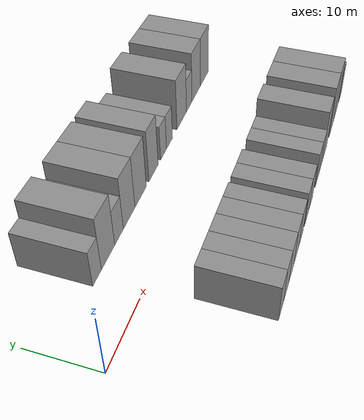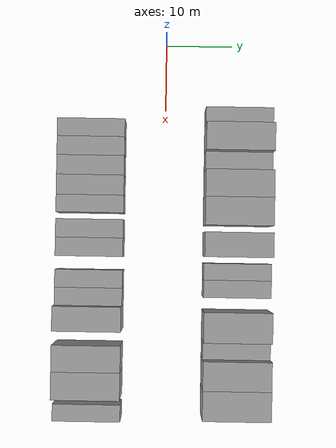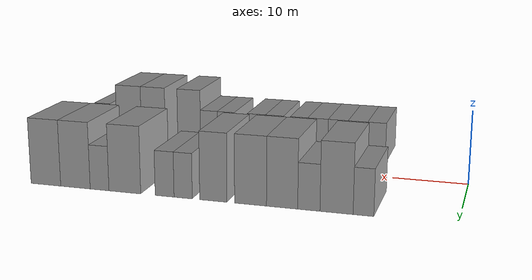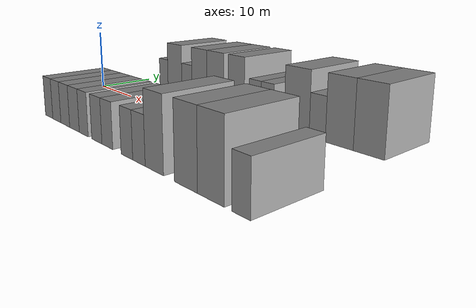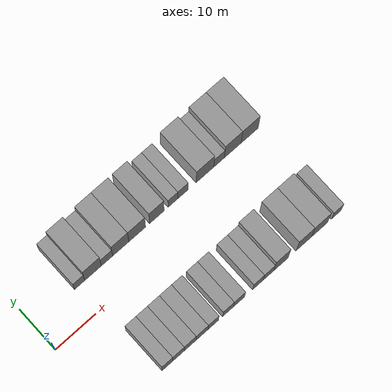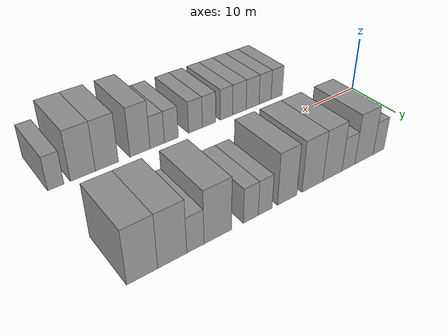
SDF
<sdf version="1.6">
 <world name="default">
  <model name="building_1">
   <static>1</static>
   <pose>11.2626 11.0000 0 0.000000 0.000000 1.570796</pose>
   <link name="link">
    <pose>0 0 3.00 0 0 0</pose>
    <collision name="collision"><geometry><box><size>10.0000 2.5252 6.0000</size></box></geometry></collision>
    <visual name="visual">
     <cast_shadows>0</cast_shadows>
     <geometry><box><size>10.0000 2.5252 6.0000</size></box></geometry>
     <material>
      <script>
       <uri>model://grey_wall/materials/scripts</uri>
       <uri>model://grey_wall/materials/textures</uri>
       <name>vrc/grey_wall</name>
      </script>
     </material>
    </visual>
   </link>
  </model>
  <model name="building_2">
   <static>1</static>
   <pose>14.5752 11.0000 0 0.000000 0.000000 1.570796</pose>
   <link name="link">
    <pose>0 0 4.50 0 0 0</pose>
    <collision name="collision"><geometry><box><size>10.0000 4.1001 9.0000</size></box></geometry></collision>
    <visual name="visual">
     <cast_shadows>0</cast_shadows>
     <geometry><box><size>10.0000 4.1001 9.0000</size></box></geometry>
     <material>
      <script>
       <uri>model://grey_wall/materials/scripts</uri>
       <uri>model://grey_wall/materials/textures</uri>
       <name>vrc/grey_wall</name>
      </script>
     </material>
    </visual>
   </link>
  </model>
  <model name="building_3">
   <static>1</static>
   <pose>18.0243 11.0000 0 0.000000 0.000000 1.570796</pose>
   <link name="link">
    <pose>0 0 3.00 0 0 0</pose>
    <collision name="collision"><geometry><box><size>10.0000 2.7979 6.0000</size></box></geometry></collision>
    <visual name="visual">
     <cast_shadows>0</cast_shadows>
     <geometry><box><size>10.0000 2.7979 6.0000</size></box></geometry>
     <material>
      <script>
       <uri>model://grey_wall/materials/scripts</uri>
       <uri>model://grey_wall/materials/textures</uri>
       <name>vrc/grey_wall</name>
      </script>
     </material>
    </visual>
   </link>
  </model>
  <model name="building_4">
   <static>1</static>
   <pose>21.4172 11.0000 0 0.000000 0.000000 1.570796</pose>
   <link name="link">
    <pose>0 0 4.50 0 0 0</pose>
    <collision name="collision"><geometry><box><size>10.0000 3.9879 9.0000</size></box></geometry></collision>
    <visual name="visual">
     <cast_shadows>0</cast_shadows>
     <geometry><box><size>10.0000 3.9879 9.0000</size></box></geometry>
     <material>
      <script>
       <uri>model://grey_wall/materials/scripts</uri>
       <uri>model://grey_wall/materials/textures</uri>
       <name>vrc/grey_wall</name>
      </script>
     </material>
    </visual>
   </link>
  </model>
  <model name="building_5">
   <static>1</static>
   <pose>25.4855 11.0000 0 0.000000 0.000000 1.570796</pose>
   <link name="link">
    <pose>0 0 4.50 0 0 0</pose>
    <collision name="collision"><geometry><box><size>10.0000 4.1488 9.0000</size></box></geometry></collision>
    <visual name="visual">
     <cast_shadows>0</cast_shadows>
     <geometry><box><size>10.0000 4.1488 9.0000</size></box></geometry>
     <material>
      <script>
       <uri>model://grey_wall/materials/scripts</uri>
       <uri>model://grey_wall/materials/textures</uri>
       <name>vrc/grey_wall</name>
      </script>
     </material>
    </visual>
   </link>
  </model>
  <model name="building_6">
   <static>1</static>
   <pose>30.3708 11.0000 0 0.000000 0.000000 1.570796</pose>
   <link name="link">
    <pose>0 0 4.50 0 0 0</pose>
    <collision name="collision"><geometry><box><size>10.0000 3.6217 9.0000</size></box></geometry></collision>
    <visual name="visual">
     <cast_shadows>0</cast_shadows>
     <geometry><box><size>10.0000 3.6217 9.0000</size></box></geometry>
     <material>
      <script>
       <uri>model://grey_wall/materials/scripts</uri>
       <uri>model://grey_wall/materials/textures</uri>
       <name>vrc/grey_wall</name>
      </script>
     </material>
    </visual>
   </link>
  </model>
  <model name="building_7">
   <static>1</static>
   <pose>34.4124 11.0000 0 0.000000 0.000000 1.570796</pose>
   <link name="link">
    <pose>0 0 3.00 0 0 0</pose>
    <collision name="collision"><geometry><box><size>10.0000 2.4615 6.0000</size></box></geometry></collision>
    <visual name="visual">
     <cast_shadows>0</cast_shadows>
     <geometry><box><size>10.0000 2.4615 6.0000</size></box></geometry>
     <material>
      <script>
       <uri>model://grey_wall/materials/scripts</uri>
       <uri>model://grey_wall/materials/textures</uri>
       <name>vrc/grey_wall</name>
      </script>
     </material>
    </visual>
   </link>
  </model>
  <model name="building_8">
   <static>1</static>
   <pose>36.9330 11.0000 0 0.000000 0.000000 1.570796</pose>
   <link name="link">
    <pose>0 0 3.00 0 0 0</pose>
    <collision name="collision"><geometry><box><size>10.0000 2.5796 6.0000</size></box></geometry></collision>
    <visual name="visual">
     <cast_shadows>0</cast_shadows>
     <geometry><box><size>10.0000 2.5796 6.0000</size></box></geometry>
     <material>
      <script>
       <uri>model://grey_wall/materials/scripts</uri>
       <uri>model://grey_wall/materials/textures</uri>
       <name>vrc/grey_wall</name>
      </script>
     </material>
    </visual>
   </link>
  </model>
  <model name="building_9">
   <static>1</static>
   <pose>42.4474 11.0000 0 0.000000 0.000000 1.570796</pose>
   <link name="link">
    <pose>0 0 4.50 0 0 0</pose>
    <collision name="collision"><geometry><box><size>10.0000 4.4493 9.0000</size></box></geometry></collision>
    <visual name="visual">
     <cast_shadows>0</cast_shadows>
     <geometry><box><size>10.0000 4.4493 9.0000</size></box></geometry>
     <material>
      <script>
       <uri>model://grey_wall/materials/scripts</uri>
       <uri>model://grey_wall/materials/textures</uri>
       <name>vrc/grey_wall</name>
      </script>
     </material>
    </visual>
   </link>
  </model>
  <model name="building_10">
   <static>1</static>
   <pose>46.0073 11.0000 0 0.000000 0.000000 1.570796</pose>
   <link name="link">
    <pose>0 0 3.00 0 0 0</pose>
    <collision name="collision"><geometry><box><size>10.0000 2.6704 6.0000</size></box></geometry></collision>
    <visual name="visual">
     <cast_shadows>0</cast_shadows>
     <geometry><box><size>10.0000 2.6704 6.0000</size></box></geometry>
     <material>
      <script>
       <uri>model://grey_wall/materials/scripts</uri>
       <uri>model://grey_wall/materials/textures</uri>
       <name>vrc/grey_wall</name>
      </script>
     </material>
    </visual>
   </link>
  </model>
  <model name="building_11">
   <static>1</static>
   <pose>49.4722 11.0000 0 0.000000 0.000000 1.570796</pose>
   <link name="link">
    <pose>0 0 4.50 0 0 0</pose>
    <collision name="collision"><geometry><box><size>10.0000 4.2595 9.0000</size></box></geometry></collision>
    <visual name="visual">
     <cast_shadows>0</cast_shadows>
     <geometry><box><size>10.0000 4.2595 9.0000</size></box></geometry>
     <material>
      <script>
       <uri>model://grey_wall/materials/scripts</uri>
       <uri>model://grey_wall/materials/textures</uri>
       <name>vrc/grey_wall</name>
      </script>
     </material>
    </visual>
   </link>
  </model>
  <model name="building_12">
   <static>1</static>
   <pose>53.7757 11.0000 0 0.000000 0.000000 1.570796</pose>
   <link name="link">
    <pose>0 0 4.50 0 0 0</pose>
    <collision name="collision"><geometry><box><size>10.0000 4.3475 9.0000</size></box></geometry></collision>
    <visual name="visual">
     <cast_shadows>0</cast_shadows>
     <geometry><box><size>10.0000 4.3475 9.0000</size></box></geometry>
     <material>
      <script>
       <uri>model://grey_wall/materials/scripts</uri>
       <uri>model://grey_wall/materials/textures</uri>
       <name>vrc/grey_wall</name>
      </script>
     </material>
    </visual>
   </link>
  </model>
  <model name="building_50">
   <static>1</static>
   <pose>13.3277 -11.0000 0 0.000000 0.000000 1.570796</pose>
   <link name="link">
    <pose>0 0 3.00 0 0 0</pose>
    <collision name="collision"><geometry><box><size>10.0000 2.6553 6.0000</size></box></geometry></collision>
    <visual name="visual">
     <cast_shadows>0</cast_shadows>
     <geometry><box><size>10.0000 2.6553 6.0000</size></box></geometry>
     <material>
      <script>
       <uri>model://grey_wall/materials/scripts</uri>
       <uri>model://grey_wall/materials/textures</uri>
       <name>vrc/grey_wall</name>
      </script>
     </material>
    </visual>
   </link>
  </model>
  <model name="building_51">
   <static>1</static>
   <pose>16.0517 -11.0000 0 0.000000 0.000000 1.570796</pose>
   <link name="link">
    <pose>0 0 3.00 0 0 0</pose>
    <collision name="collision"><geometry><box><size>10.0000 2.7927 6.0000</size></box></geometry></collision>
    <visual name="visual">
     <cast_shadows>0</cast_shadows>
     <geometry><box><size>10.0000 2.7927 6.0000</size></box></geometry>
     <material>
      <script>
       <uri>model://grey_wall/materials/scripts</uri>
       <uri>model://grey_wall/materials/textures</uri>
       <name>vrc/grey_wall</name>
      </script>
     </material>
    </visual>
   </link>
  </model>
  <model name="building_52">
   <static>1</static>
   <pose>18.8957 -11.0000 0 0.000000 0.000000 1.570796</pose>
   <link name="link">
    <pose>0 0 3.00 0 0 0</pose>
    <collision name="collision"><geometry><box><size>10.0000 2.8953 6.0000</size></box></geometry></collision>
    <visual name="visual">
     <cast_shadows>0</cast_shadows>
     <geometry><box><size>10.0000 2.8953 6.0000</size></box></geometry>
     <material>
      <script>
       <uri>model://grey_wall/materials/scripts</uri>
       <uri>model://grey_wall/materials/textures</uri>
       <name>vrc/grey_wall</name>
      </script>
     </material>
    </visual>
   </link>
  </model>
  <model name="building_53">
   <static>1</static>
   <pose>21.8274 -11.0000 0 0.000000 0.000000 1.570796</pose>
   <link name="link">
    <pose>0 0 3.00 0 0 0</pose>
    <collision name="collision"><geometry><box><size>10.0000 2.9682 6.0000</size></box></geometry></collision>
    <visual name="visual">
     <cast_shadows>0</cast_shadows>
     <geometry><box><size>10.0000 2.9682 6.0000</size></box></geometry>
     <material>
      <script>
       <uri>model://grey_wall/materials/scripts</uri>
       <uri>model://grey_wall/materials/textures</uri>
       <name>vrc/grey_wall</name>
      </script>
     </material>
    </visual>
   </link>
  </model>
  <model name="building_54">
   <static>1</static>
   <pose>24.6127 -11.0000 0 0.000000 0.000000 1.570796</pose>
   <link name="link">
    <pose>0 0 3.00 0 0 0</pose>
    <collision name="collision"><geometry><box><size>10.0000 2.6025 6.0000</size></box></geometry></collision>
    <visual name="visual">
     <cast_shadows>0</cast_shadows>
     <geometry><box><size>10.0000 2.6025 6.0000</size></box></geometry>
     <material>
      <script>
       <uri>model://grey_wall/materials/scripts</uri>
       <uri>model://grey_wall/materials/textures</uri>
       <name>vrc/grey_wall</name>
      </script>
     </material>
    </visual>
   </link>
  </model>
  <model name="building_55">
   <static>1</static>
   <pose>28.2843 -11.0000 0 0.000000 0.000000 1.570796</pose>
   <link name="link">
    <pose>0 0 3.00 0 0 0</pose>
    <collision name="collision"><geometry><box><size>10.0000 2.7407 6.0000</size></box></geometry></collision>
    <visual name="visual">
     <cast_shadows>0</cast_shadows>
     <geometry><box><size>10.0000 2.7407 6.0000</size></box></geometry>
     <material>
      <script>
       <uri>model://grey_wall/materials/scripts</uri>
       <uri>model://grey_wall/materials/textures</uri>
       <name>vrc/grey_wall</name>
      </script>
     </material>
    </visual>
   </link>
  </model>
  <model name="building_56">
   <static>1</static>
   <pose>31.0328 -11.0000 0 0.000000 0.000000 1.570796</pose>
   <link name="link">
    <pose>0 0 3.00 0 0 0</pose>
    <collision name="collision"><geometry><box><size>10.0000 2.7564 6.0000</size></box></geometry></collision>
    <visual name="visual">
     <cast_shadows>0</cast_shadows>
     <geometry><box><size>10.0000 2.7564 6.0000</size></box></geometry>
     <material>
      <script>
       <uri>model://grey_wall/materials/scripts</uri>
       <uri>model://grey_wall/materials/textures</uri>
       <name>vrc/grey_wall</name>
      </script>
     </material>
    </visual>
   </link>
  </model>
  <model name="building_57">
   <static>1</static>
   <pose>35.7316 -11.0000 0 0.000000 0.000000 1.570796</pose>
   <link name="link">
    <pose>0 0 3.00 0 0 0</pose>
    <collision name="collision"><geometry><box><size>10.0000 2.6412 6.0000</size></box></geometry></collision>
    <visual name="visual">
     <cast_shadows>0</cast_shadows>
     <geometry><box><size>10.0000 2.6412 6.0000</size></box></geometry>
     <material>
      <script>
       <uri>model://grey_wall/materials/scripts</uri>
       <uri>model://grey_wall/materials/textures</uri>
       <name>vrc/grey_wall</name>
      </script>
     </material>
    </visual>
   </link>
  </model>
  <model name="building_58">
   <static>1</static>
   <pose>38.3805 -11.0000 0 0.000000 0.000000 1.570796</pose>
   <link name="link">
    <pose>0 0 3.00 0 0 0</pose>
    <collision name="collision"><geometry><box><size>10.0000 2.6566 6.0000</size></box></geometry></collision>
    <visual name="visual">
     <cast_shadows>0</cast_shadows>
     <geometry><box><size>10.0000 2.6566 6.0000</size></box></geometry>
     <material>
      <script>
       <uri>model://grey_wall/materials/scripts</uri>
       <uri>model://grey_wall/materials/textures</uri>
       <name>vrc/grey_wall</name>
      </script>
     </material>
    </visual>
   </link>
  </model>
  <model name="building_59">
   <static>1</static>
   <pose>41.5148 -11.0000 0 0.000000 0.000000 1.570796</pose>
   <link name="link">
    <pose>0 0 4.50 0 0 0</pose>
    <collision name="collision"><geometry><box><size>10.0000 3.6121 9.0000</size></box></geometry></collision>
    <visual name="visual">
     <cast_shadows>0</cast_shadows>
     <geometry><box><size>10.0000 3.6121 9.0000</size></box></geometry>
     <material>
      <script>
       <uri>model://grey_wall/materials/scripts</uri>
       <uri>model://grey_wall/materials/textures</uri>
       <name>vrc/grey_wall</name>
      </script>
     </material>
    </visual>
   </link>
  </model>
  <model name="building_60">
   <static>1</static>
   <pose>47.2590 -11.0000 0 0.000000 0.000000 1.570796</pose>
   <link name="link">
    <pose>0 0 4.50 0 0 0</pose>
    <collision name="collision"><geometry><box><size>10.0000 3.8763 9.0000</size></box></geometry></collision>
    <visual name="visual">
     <cast_shadows>0</cast_shadows>
     <geometry><box><size>10.0000 3.8763 9.0000</size></box></geometry>
     <material>
      <script>
       <uri>model://grey_wall/materials/scripts</uri>
       <uri>model://grey_wall/materials/textures</uri>
       <name>vrc/grey_wall</name>
      </script>
     </material>
    </visual>
   </link>
  </model>
  <model name="building_61">
   <static>1</static>
   <pose>51.2214 -11.0000 0 0.000000 0.000000 1.570796</pose>
   <link name="link">
    <pose>0 0 4.50 0 0 0</pose>
    <collision name="collision"><geometry><box><size>10.0000 4.0485 9.0000</size></box></geometry></collision>
    <visual name="visual">
     <cast_shadows>0</cast_shadows>
     <geometry><box><size>10.0000 4.0485 9.0000</size></box></geometry>
     <material>
      <script>
       <uri>model://grey_wall/materials/scripts</uri>
       <uri>model://grey_wall/materials/textures</uri>
       <name>vrc/grey_wall</name>
      </script>
     </material>
    </visual>
   </link>
  </model>
  <model name="building_62">
   <static>1</static>
   <pose>55.5011 -11.0000 0 0.000000 0.000000 1.570796</pose>
   <link name="link">
    <pose>0 0 3.00 0 0 0</pose>
    <collision name="collision"><geometry><box><size>10.0000 2.5110 6.0000</size></box></geometry></collision>
    <visual name="visual">
     <cast_shadows>0</cast_shadows>
     <geometry><box><size>10.0000 2.5110 6.0000</size></box></geometry>
     <material>
      <script>
       <uri>model://grey_wall/materials/scripts</uri>
       <uri>model://grey_wall/materials/textures</uri>
       <name>vrc/grey_wall</name>
      </script>
     </material>
    </visual>
   </link>
  </model>
 </world>
</sdf>
